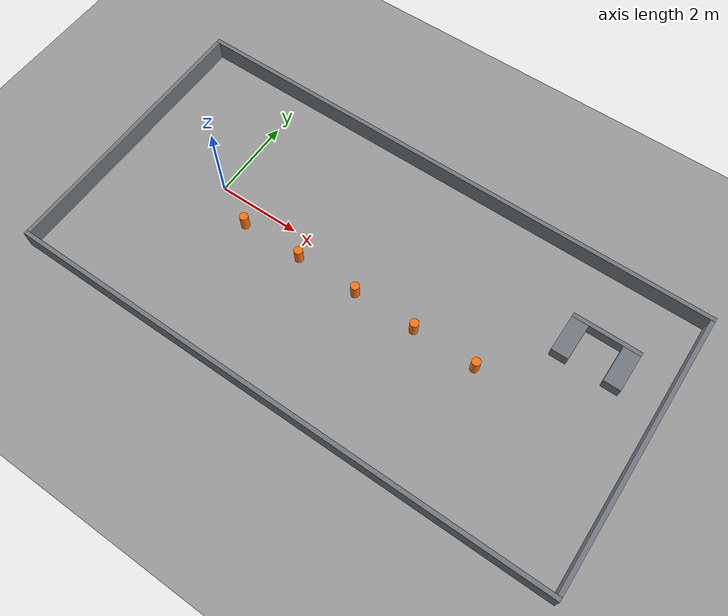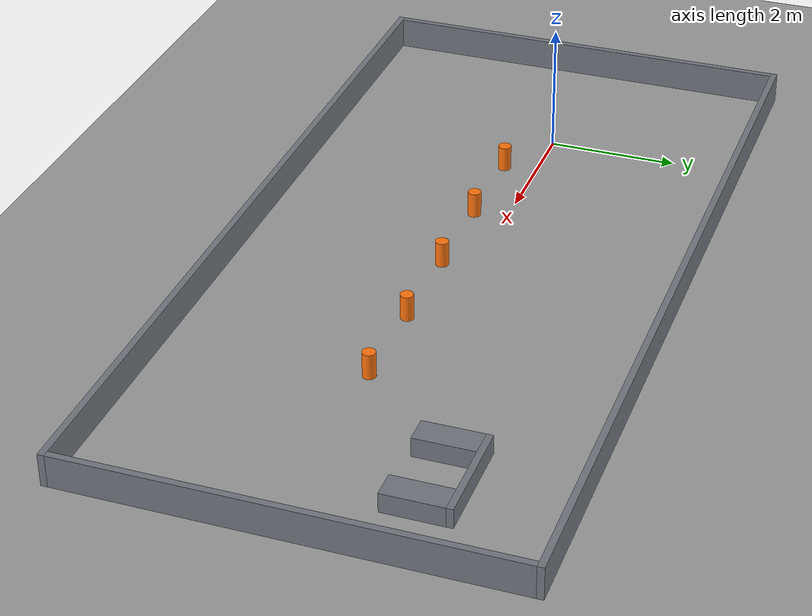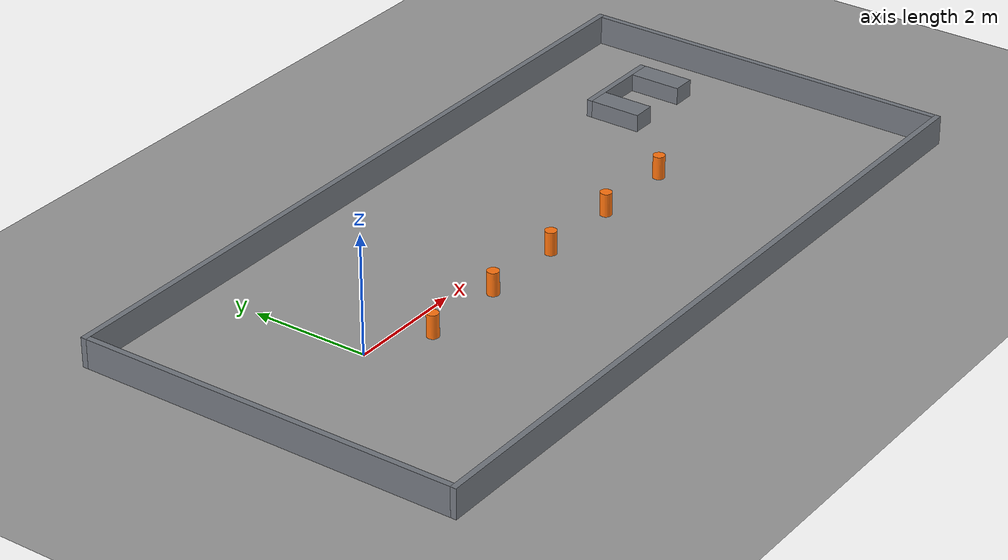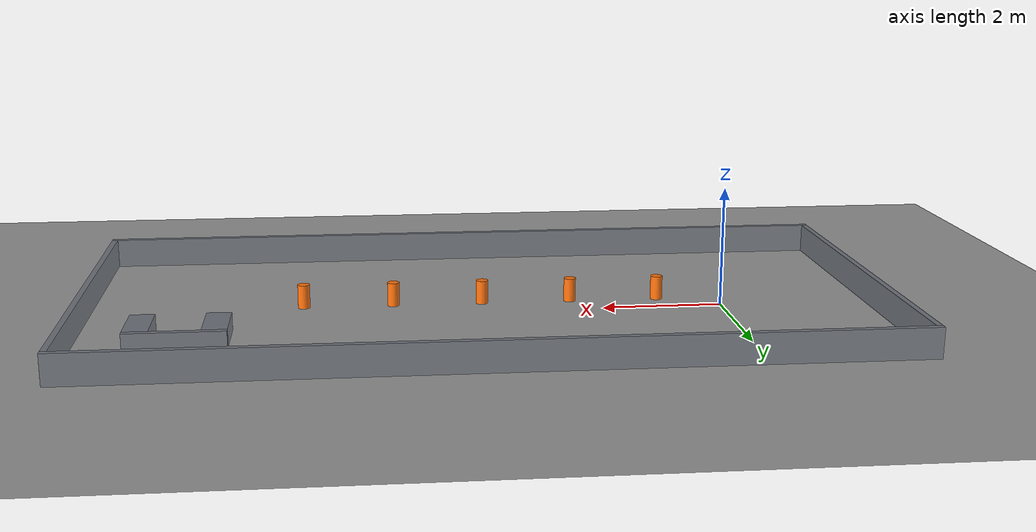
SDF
<?xml version="1.0" ?>
<!-- Generated by robot_lab_maps/tools/gen_car_course.py - do not edit by hand.
     Cone slalom and parking bay around the nav_empty spawn (R5.5). -->
<sdf version="1.7">
  <world name="car_course">
    <physics type="ode"><max_step_size>0.002</max_step_size></physics>
    <scene><ambient>0.5 0.5 0.5 1</ambient><background>0.7 0.7 0.7 1</background></scene>
    <light name="sun" type="directional">
      <cast_shadows>true</cast_shadows>
      <pose>0 0 10 0 0 0</pose>
      <diffuse>0.8 0.8 0.8 1</diffuse>
      <specular>0.2 0.2 0.2 1</specular>
      <direction>-0.5 0.3 -1.0</direction>
    </light>
    <model name="ground_plane">
      <static>true</static>
      <link name="link">
        <collision name="collision"><geometry><plane><normal>0 0 1</normal><size>40 40</size></plane></geometry></collision>
        <visual name="visual"><geometry><plane><normal>0 0 1</normal><size>40 40</size></plane></geometry>
          <material><ambient>0.6 0.6 0.6 1</ambient><diffuse>0.6 0.6 0.6 1</diffuse></material></visual>
      </link>
    </model>
    <model name="cone_0">
      <static>true</static>
      <pose>1.0 -0.5 0.2 0 0 0</pose>
      <link name="link">
        <collision name="collision"><geometry><cylinder><radius>0.1</radius><length>0.4</length></cylinder></geometry></collision>
        <visual name="visual"><geometry><cylinder><radius>0.1</radius><length>0.4</length></cylinder></geometry>
          <material><ambient>1 0.45 0.05 1</ambient><diffuse>1 0.45 0.05 1</diffuse></material></visual>
      </link>
    </model>
    <model name="cone_1">
      <static>true</static>
      <pose>2.5 -0.5 0.2 0 0 0</pose>
      <link name="link">
        <collision name="collision"><geometry><cylinder><radius>0.1</radius><length>0.4</length></cylinder></geometry></collision>
        <visual name="visual"><geometry><cylinder><radius>0.1</radius><length>0.4</length></cylinder></geometry>
          <material><ambient>1 0.45 0.05 1</ambient><diffuse>1 0.45 0.05 1</diffuse></material></visual>
      </link>
    </model>
    <model name="cone_2">
      <static>true</static>
      <pose>4.0 -0.5 0.2 0 0 0</pose>
      <link name="link">
        <collision name="collision"><geometry><cylinder><radius>0.1</radius><length>0.4</length></cylinder></geometry></collision>
        <visual name="visual"><geometry><cylinder><radius>0.1</radius><length>0.4</length></cylinder></geometry>
          <material><ambient>1 0.45 0.05 1</ambient><diffuse>1 0.45 0.05 1</diffuse></material></visual>
      </link>
    </model>
    <model name="cone_3">
      <static>true</static>
      <pose>5.5 -0.5 0.2 0 0 0</pose>
      <link name="link">
        <collision name="collision"><geometry><cylinder><radius>0.1</radius><length>0.4</length></cylinder></geometry></collision>
        <visual name="visual"><geometry><cylinder><radius>0.1</radius><length>0.4</length></cylinder></geometry>
          <material><ambient>1 0.45 0.05 1</ambient><diffuse>1 0.45 0.05 1</diffuse></material></visual>
      </link>
    </model>
    <model name="cone_4">
      <static>true</static>
      <pose>7.0 -0.5 0.2 0 0 0</pose>
      <link name="link">
        <collision name="collision"><geometry><cylinder><radius>0.1</radius><length>0.4</length></cylinder></geometry></collision>
        <visual name="visual"><geometry><cylinder><radius>0.1</radius><length>0.4</length></cylinder></geometry>
          <material><ambient>1 0.45 0.05 1</ambient><diffuse>1 0.45 0.05 1</diffuse></material></visual>
      </link>
    </model>
    <model name="wall_south">
      <static>true</static>
      <pose>4.000 -3.550 0.250 0 0 0</pose>
      <link name="link">
        <collision name="collision"><geometry><box><size>13.200 0.100 0.500</size></box></geometry></collision>
        <visual name="visual"><geometry><box><size>13.200 0.100 0.500</size></box></geometry>
          <material><ambient>0.45 0.47 0.5 1</ambient><diffuse>0.45 0.47 0.5 1</diffuse></material></visual>
      </link>
    </model>
    <model name="wall_north">
      <static>true</static>
      <pose>4.000 3.050 0.250 0 0 0</pose>
      <link name="link">
        <collision name="collision"><geometry><box><size>13.200 0.100 0.500</size></box></geometry></collision>
        <visual name="visual"><geometry><box><size>13.200 0.100 0.500</size></box></geometry>
          <material><ambient>0.45 0.47 0.5 1</ambient><diffuse>0.45 0.47 0.5 1</diffuse></material></visual>
      </link>
    </model>
    <model name="wall_west">
      <static>true</static>
      <pose>-2.550 -0.250 0.250 0 0 0</pose>
      <link name="link">
        <collision name="collision"><geometry><box><size>0.100 6.500 0.500</size></box></geometry></collision>
        <visual name="visual"><geometry><box><size>0.100 6.500 0.500</size></box></geometry>
          <material><ambient>0.45 0.47 0.5 1</ambient><diffuse>0.45 0.47 0.5 1</diffuse></material></visual>
      </link>
    </model>
    <model name="wall_east">
      <static>true</static>
      <pose>10.550 -0.250 0.250 0 0 0</pose>
      <link name="link">
        <collision name="collision"><geometry><box><size>0.100 6.500 0.500</size></box></geometry></collision>
        <visual name="visual"><geometry><box><size>0.100 6.500 0.500</size></box></geometry>
          <material><ambient>0.45 0.47 0.5 1</ambient><diffuse>0.45 0.47 0.5 1</diffuse></material></visual>
      </link>
    </model>
    <model name="parked_left">
      <static>true</static>
      <pose>8.300 1.100 0.150 0 0 0</pose>
      <link name="link">
        <collision name="collision"><geometry><box><size>0.400 0.900 0.300</size></box></geometry></collision>
        <visual name="visual"><geometry><box><size>0.400 0.900 0.300</size></box></geometry>
          <material><ambient>0.45 0.47 0.5 1</ambient><diffuse>0.45 0.47 0.5 1</diffuse></material></visual>
      </link>
    </model>
    <model name="parked_right">
      <static>true</static>
      <pose>9.500 1.100 0.150 0 0 0</pose>
      <link name="link">
        <collision name="collision"><geometry><box><size>0.400 0.900 0.300</size></box></geometry></collision>
        <visual name="visual"><geometry><box><size>0.400 0.900 0.300</size></box></geometry>
          <material><ambient>0.45 0.47 0.5 1</ambient><diffuse>0.45 0.47 0.5 1</diffuse></material></visual>
      </link>
    </model>
    <model name="bay_back">
      <static>true</static>
      <pose>8.900 1.600 0.150 0 0 0</pose>
      <link name="link">
        <collision name="collision"><geometry><box><size>1.600 0.100 0.300</size></box></geometry></collision>
        <visual name="visual"><geometry><box><size>1.600 0.100 0.300</size></box></geometry>
          <material><ambient>0.45 0.47 0.5 1</ambient><diffuse>0.45 0.47 0.5 1</diffuse></material></visual>
      </link>
    </model>
  </world>
</sdf>
